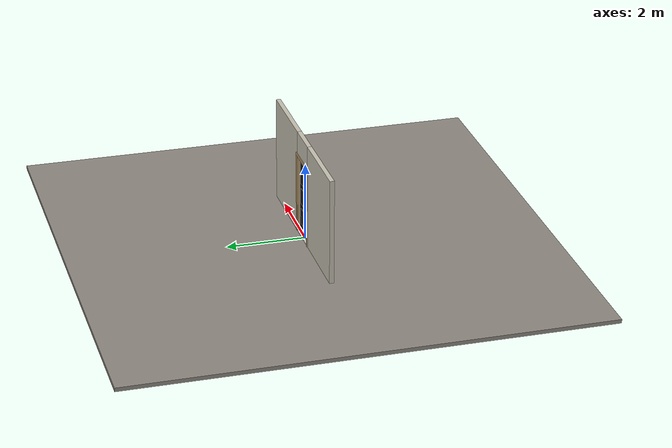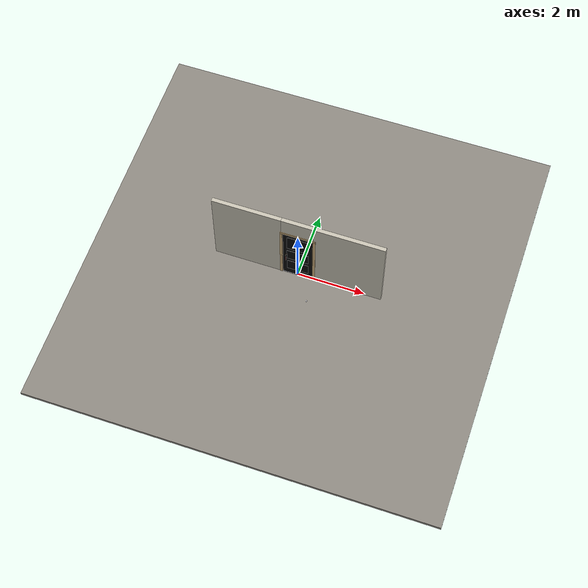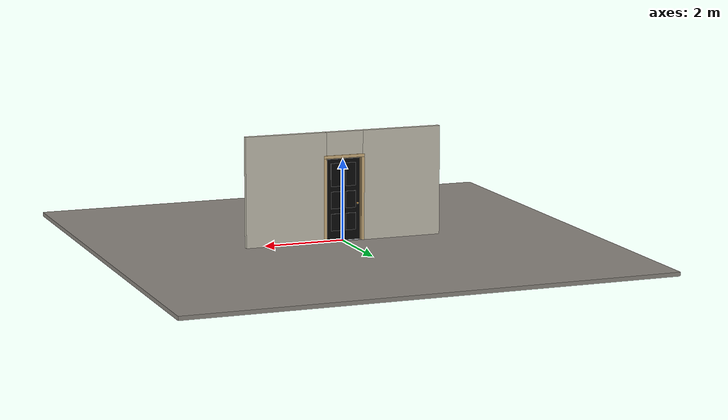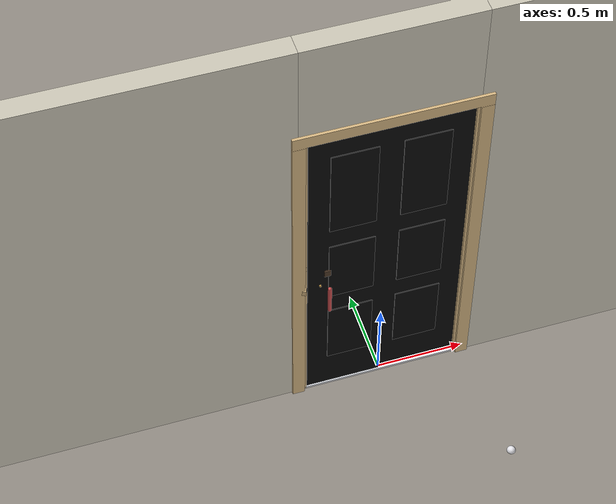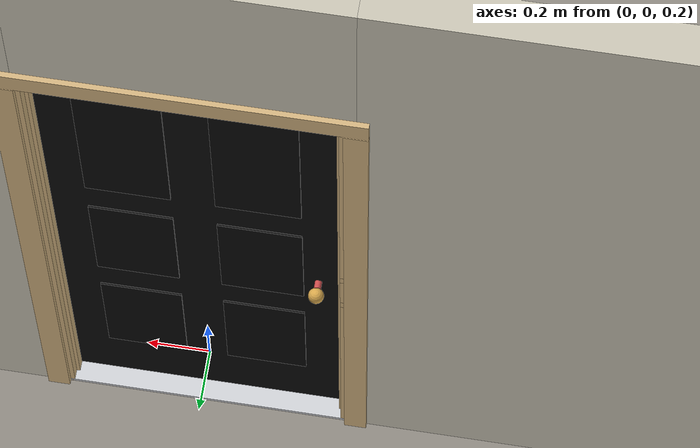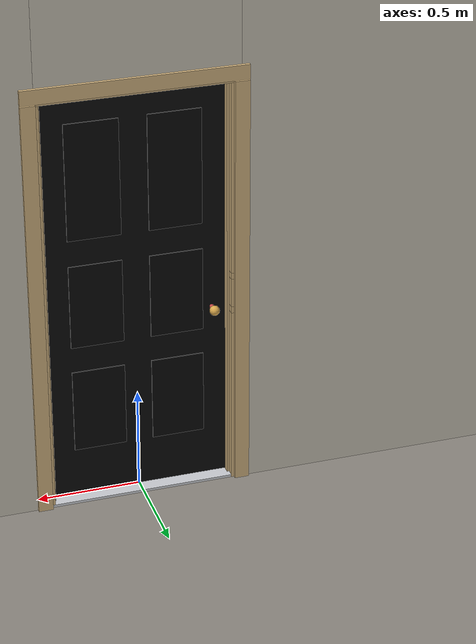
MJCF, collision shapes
<?xml version="1.0" ?>
<mujoco model="db0408_swing_single_full">
  <compiler angle="radian" meshdir="../../hardware" texturedir="../../textures" autolimits="true" inertiafromgeom="false"/>
  <option timestep="0.002" integrator="implicitfast" cone="elliptic" impratio="10" noslip_iterations="3">
    <flag multiccd="enable"/>
  </option>
  <size memory="16M"/>
  <default>
    <geom condim="4" solref="0.005 1" solimp="0.95 0.99 0.001"/>
    <joint solreflimit="0.005 1" solimplimit="0.95 0.99 0.001"/>
    <tendon solreflimit="0.005 1"/>
    <equality solref="0.002 1"/>
  </default>
  <visual>
    <headlight ambient="0.4 0.4 0.4" diffuse="0.7 0.7 0.7" specular="0.2 0.2 0.2"/>
    <quality shadowsize="4096"/>
    <map znear="0.01" zfar="60"/>
  </visual>
  <asset>
    <mesh name="cyl_face_e9e5036966" file="cyl_face_e9e5036966.obj"/>
    <mesh name="handleset_beb5526ad2" file="handleset_beb5526ad2.obj"/>
    <mesh name="hinge_2af0f4d6ca" file="hinge_2af0f4d6ca.obj"/>
    <mesh name="hinge_jamb_c0c0a62ada" file="hinge_jamb_c0c0a62ada.obj"/>
    <mesh name="knob_d1888f6f03" file="knob_d1888f6f03.obj"/>
    <material name="mat_floor" rgba="0.55 0.53 0.5 1" specular="0.2" shininess="0.15" reflectance="0"/>
    <material name="mat_wall" rgba="0.78 0.76 0.7 1" specular="0.2" shininess="0.1" reflectance="0"/>
    <material name="mat_leaf" rgba="0.04 0.04 0.04 1" specular="0.23" shininess="0.53" reflectance="0.02"/>
    <material name="mat_leaf_panel" rgba="0.037 0.037 0.037 1" specular="0.23" shininess="0.53" reflectance="0.02"/>
    <material name="mat_hinge" rgba="0.65 0.66 0.68 1" specular="0.74" shininess="0.5" reflectance="0.36"/>
    <material name="mat_op_bronze" rgba="0.3 0.22 0.15 1" specular="0.74" shininess="0.5" reflectance="0.36"/>
    <material name="mat_op_brass" rgba="0.85 0.66 0.3 1" specular="0.8" shininess="0.75" reflectance="0.4"/>
    <material name="mat_trim" rgba="0.85 0.66 0.3 1" specular="0.8" shininess="0.75" reflectance="0.4"/>
    <material name="mat_bolt" rgba="0.85 0.66 0.3 1" specular="0.8" shininess="0.75" reflectance="0.4"/>
    <material name="mat_deadbolt" rgba="0.85 0.66 0.3 1" specular="0.8" shininess="0.75" reflectance="0.4"/>
    <material name="mat_frame" rgba="0.82 0.7 0.5 1" specular="0.2" shininess="0.45" reflectance="0"/>
    <material name="mat_seal" rgba="0.1 0.1 0.1 1" specular="0.2" shininess="0.1" reflectance="0"/>
    <material name="mat_threshold" rgba="0.8 0.81 0.83 1" specular="0.8" shininess="0.6" reflectance="0.4"/>
    <material name="mat_stop" rgba="0.9 0.9 0.92 1" specular="0.8" shininess="0.9" reflectance="0.4"/>
    <texture name="skybox" type="skybox" builtin="gradient" rgb1="0.6 0.7 0.85" rgb2="0.9 0.92 0.95" width="256" height="256"/>
  </asset>
  <worldbody>
    <light name="sun" pos="1.5 -2.5 4" dir="-0.3 0.5 -0.8" directional="true" diffuse="0.8 0.8 0.8" specular="0.3 0.3 0.3" castshadow="true"/>
    <light name="fill" pos="-1.5 2.5 3" dir="0.3 -0.5 -0.7" directional="true" diffuse="0.35 0.35 0.4" castshadow="false"/>
    <camera name="robot_view" pos="0 -2.513687 1.734312" xyaxes="1 0 0 0 0.26963 0.962964" fovy="52"/>
    <camera name="far_view" pos="0 2.570688 1.734312" xyaxes="-1 0 0 0 -0.26963 0.962964" fovy="52"/>
    <camera name="iso" pos="-1.932062 -2.106937 2.141063" xyaxes="0.741536 -0.670913 0 0.242917 0.268487 0.932151" fovy="46"/>
    <camera name="detail_handle" pos="-0.146 -0.882 1.134" xyaxes="0.97561 0.219512 0 -0.070934 0.315262 0.94635" fovy="38"/>
    <geom name="floor" type="box" size="6 6 0.05" pos="0 0 -0.05" material="mat_floor" group="0" contype="1" conaffinity="1" friction="0.8 0.005 0.0001" density="2400"/>
    <geom name="wall_left" type="box" size="1.0075 0.0575 1.35" pos="-1.4925 0.0285 1.35" material="mat_wall" group="0" contype="1" conaffinity="1" friction="0.6 0.005 0.0001" density="800"/>
    <geom name="wall_right" type="box" size="1.0225 0.0575 1.35" pos="1.4775 0.0285 1.35" material="mat_wall" group="0" contype="1" conaffinity="1" friction="0.6 0.005 0.0001" density="800"/>
    <geom name="wall_header" type="box" size="0.47 0.0575 0.303" pos="-0.015 0.0285 2.397" material="mat_wall" group="0" contype="1" conaffinity="1" friction="0.6 0.005 0.0001" density="800"/>
    <geom name="hinge_0_jamb" type="mesh" mesh="hinge_jamb_c0c0a62ada" pos="0.433 -0.029 0.267" quat="0 0 1 0" material="mat_hinge" group="1" contype="0" conaffinity="0" density="7850"/>
    <geom name="hinge_1_jamb" type="mesh" mesh="hinge_jamb_c0c0a62ada" pos="0.433 -0.029 1.029" quat="0 0 1 0" material="mat_hinge" group="1" contype="0" conaffinity="0" density="7850"/>
    <geom name="hinge_2_jamb" type="mesh" mesh="hinge_jamb_c0c0a62ada" pos="0.433 -0.029 1.861" quat="0 0 1 0" material="mat_hinge" group="1" contype="0" conaffinity="0" density="7850"/>
    <geom name="leaf_deadbolt_strike_b" type="box" size="0.0155 0.003 0.0005" pos="-0.4355 0 1.0705" quat="0.5 0.5 0.5 0.5" material="mat_deadbolt" group="1" contype="0" conaffinity="0" density="7800"/>
    <geom name="leaf_deadbolt_strike_l" type="box" size="0.003 0.0155 0.0005" pos="-0.4355 -0.0125 1.089" quat="0.5 0.5 0.5 0.5" material="mat_deadbolt" group="1" contype="0" conaffinity="0" density="7800"/>
    <geom name="leaf_deadbolt_strike_t" type="box" size="0.0155 0.003 0.0005" pos="-0.4355 0 1.1075" quat="0.5 0.5 0.5 0.5" material="mat_deadbolt" group="1" contype="0" conaffinity="0" density="7800"/>
    <geom name="leaf_deadbolt_strike_r" type="box" size="0.003 0.0155 0.0005" pos="-0.4355 0.0125 1.089" quat="0.5 0.5 0.5 0.5" material="mat_deadbolt" group="1" contype="0" conaffinity="0" density="7800"/>
    <geom name="jamb_hinge" type="box" size="0.0095 0.0575 1.0225" pos="0.4455 0.0285 1.0225" material="mat_frame" group="0" contype="1" conaffinity="1" friction="0.6 0.005 0.0001" density="400"/>
    <geom name="strike_914_wall_n" type="box" size="0.0245 0.039075 0.0167" pos="-0.4605 0.046925 0.914" material="mat_frame" group="0" contype="1" conaffinity="1" friction="0.6 0.005 0.0001" density="400"/>
    <geom name="strike_914_wall_p" type="box" size="0.0245 0.008 0.0167" pos="-0.4605 -0.01585 0.914" material="mat_frame" group="0" contype="1" conaffinity="1" friction="0.6 0.005 0.0001" density="400"/>
    <geom name="strike_914_ramp" type="box" size="0.0245 0.01649 0.0167" pos="-0.465136 -0.028673 0.914" quat="0.977148 0 0 -0.212558" material="mat_frame" group="0" contype="1" conaffinity="1" friction="0.12 0.005 0.0001" density="400"/>
    <geom name="strike_914_back" type="box" size="0.01615 0.00785 0.0167" pos="-0.46885 0 0.914" material="mat_frame" group="0" contype="1" conaffinity="1" friction="0.6 0.005 0.0001" density="400"/>
    <geom name="strike_1089_wall_n" type="box" size="0.0245 0.03825 0.0155" pos="-0.4605 0.04775 1.089" material="mat_frame" group="0" contype="1" conaffinity="1" friction="0.6 0.005 0.0001" density="400"/>
    <geom name="strike_1089_wall_p" type="box" size="0.0245 0.00975 0.0155" pos="-0.4605 -0.01925 1.089" material="mat_frame" group="0" contype="1" conaffinity="1" friction="0.6 0.005 0.0001" density="400"/>
    <geom name="strike_1089_back" type="box" size="0.0098 0.0095 0.0155" pos="-0.4752 0 1.089" material="mat_frame" group="0" contype="1" conaffinity="1" friction="0.6 0.005 0.0001" density="400"/>
    <geom name="jamb_strike_0" type="box" size="0.0245 0.0575 0.44865" pos="-0.4605 0.0285 0.44865" material="mat_frame" group="0" contype="1" conaffinity="1" friction="0.6 0.005 0.0001" density="400"/>
    <geom name="jamb_strike_1" type="box" size="0.0245 0.0575 0.0714" pos="-0.4605 0.0285 1.0021" material="mat_frame" group="0" contype="1" conaffinity="1" friction="0.6 0.005 0.0001" density="400"/>
    <geom name="jamb_strike_2" type="box" size="0.0245 0.0575 0.47025" pos="-0.4605 0.0285 1.57475" material="mat_frame" group="0" contype="1" conaffinity="1" friction="0.6 0.005 0.0001" density="400"/>
    <geom name="jamb_head" type="box" size="0.47 0.0575 0.0095" pos="-0.015 0.0285 2.0545" material="mat_frame" group="0" contype="1" conaffinity="1" friction="0.6 0.005 0.0001" density="400"/>
    <geom name="head_stud" type="box" size="0.47 0.0575 0.015" pos="-0.015 0.0285 2.079" material="mat_wall" group="0" contype="1" conaffinity="1" friction="0.6 0.005 0.0001" density="500"/>
    <geom name="stop_hinge" type="box" size="0.0055 0.016 1.0225" pos="0.4305 0.0385 1.0225" material="mat_frame" group="0" contype="1" conaffinity="1" friction="0.6 0.005 0.0001" density="400"/>
    <geom name="stop_strike" type="box" size="0.0055 0.016 1.0225" pos="-0.4305 0.0385 1.0225" material="mat_frame" group="0" contype="1" conaffinity="1" friction="0.6 0.005 0.0001" density="400"/>
    <geom name="stop_head" type="box" size="0.436 0.016 0.0055" pos="0 0.0385 2.0395" material="mat_frame" group="0" contype="1" conaffinity="1" friction="0.6 0.005 0.0001" density="400"/>
    <geom name="seal_hinge" type="box" size="0.004 0.0015 1.0225" pos="0.433 0.0235 1.0225" material="mat_seal" group="1" contype="0" conaffinity="0" density="1100"/>
    <geom name="seal_strike" type="box" size="0.004 0.0015 1.0225" pos="-0.433 0.0235 1.0225" material="mat_seal" group="1" contype="0" conaffinity="0" density="1100"/>
    <geom name="seal_head" type="box" size="0.416 0.0015 0.008" pos="0 0.0235 2.033" material="mat_seal" group="1" contype="0" conaffinity="0" density="1100"/>
    <geom name="casing_l_n" type="box" size="0.035 0.008 1.032" pos="-0.485 -0.037 1.0225" material="mat_frame" group="2" contype="0" conaffinity="0" density="400"/>
    <geom name="casing_r_n" type="box" size="0.035 0.008 1.032" pos="0.485 -0.037 1.0225" material="mat_frame" group="2" contype="0" conaffinity="0" density="400"/>
    <geom name="casing_h_n" type="box" size="0.52 0.008 0.035" pos="0 -0.037 2.094" material="mat_frame" group="2" contype="0" conaffinity="0" density="400"/>
    <geom name="casing_l_p" type="box" size="0.035 0.008 1.032" pos="-0.485 0.094 1.0225" material="mat_frame" group="2" contype="0" conaffinity="0" density="400"/>
    <geom name="casing_r_p" type="box" size="0.035 0.008 1.032" pos="0.485 0.094 1.0225" material="mat_frame" group="2" contype="0" conaffinity="0" density="400"/>
    <geom name="casing_h_p" type="box" size="0.52 0.008 0.035" pos="0 0.094 2.094" material="mat_frame" group="2" contype="0" conaffinity="0" density="400"/>
    <geom name="threshold" type="box" size="0.455 0.0575 0.0065" pos="0 0.0285 0.0065" material="mat_threshold" group="0" contype="1" conaffinity="1" friction="0.5 0.005 0.0001" density="2700"/>
    <geom name="floor_stop_dome" type="sphere" size="0.025" pos="0.516931 -0.758862 0" material="mat_stop" group="0" contype="1" conaffinity="1" friction="0.6 0.005 0.0001" density="7000"/>
    <site name="approach_point" pos="0 -1.5 0" quat="1 0 0 0" size="0.05" rgba="0.2 0.9 0.2 0.5" group="4"/>
    <site name="goal_point" pos="0 1.5 0" quat="1 0 0 0" size="0.05" rgba="0.2 0.9 0.2 0.5" group="4"/>
    <site name="door_plane_center" pos="0 0 1.0225" quat="1 0 0 0" size="0.02" rgba="0.2 0.9 0.2 0.5" group="4"/>
    <body name="leaf" pos="0.436 0 0">
      <inertial pos="-0.44211 -0.002438 1.022642" mass="25.06094" quat="0.504121 -0.50038 -0.500084 -0.495377" diaginertia="1.679716301 8.2477927 9.913384595"/>
      <joint name="leaf_hinge" type="hinge" axis="0 0 1" pos="-0.003 -0.029 0" limited="true" range="0 1.658063" solreflimit="0.02 1" damping="0.254501" frictionloss="0.835796" armature="0.02"/>
      <geom name="leaf_slab" type="box" size="0.432 0.022 1.012" pos="-0.435 0 1.029" material="mat_leaf" group="0" contype="1" conaffinity="1" friction="0.4 0.005 0.0001" density="1"/>
      <geom name="leaf_panel_0_n" type="box" size="0.12598 0.003 0.208024" pos="-0.24402 -0.025 0.467664" material="mat_leaf_panel" group="1" contype="0" conaffinity="0" density="1"/>
      <geom name="leaf_panel_0_p" type="box" size="0.12598 0.003 0.208024" pos="-0.24402 0.025 0.467664" material="mat_leaf_panel" group="1" contype="0" conaffinity="0" density="1"/>
      <geom name="leaf_panel_1_n" type="box" size="0.12598 0.003 0.208024" pos="-0.62598 -0.025 0.467664" material="mat_leaf_panel" group="1" contype="0" conaffinity="0" density="1"/>
      <geom name="leaf_panel_1_p" type="box" size="0.12598 0.003 0.208024" pos="-0.62598 0.025 0.467664" material="mat_leaf_panel" group="1" contype="0" conaffinity="0" density="1"/>
      <geom name="leaf_panel_2_n" type="box" size="0.12598 0.003 0.208024" pos="-0.24402 -0.025 1.013712" material="mat_leaf_panel" group="1" contype="0" conaffinity="0" density="1"/>
      <geom name="leaf_panel_2_p" type="box" size="0.12598 0.003 0.208024" pos="-0.24402 0.025 1.013712" material="mat_leaf_panel" group="1" contype="0" conaffinity="0" density="1"/>
      <geom name="leaf_panel_3_n" type="box" size="0.12598 0.003 0.208024" pos="-0.62598 -0.025 1.013712" material="mat_leaf_panel" group="1" contype="0" conaffinity="0" density="1"/>
      <geom name="leaf_panel_3_p" type="box" size="0.12598 0.003 0.208024" pos="-0.62598 0.025 1.013712" material="mat_leaf_panel" group="1" contype="0" conaffinity="0" density="1"/>
      <geom name="leaf_panel_4_n" type="box" size="0.12598 0.003 0.284032" pos="-0.24402 -0.025 1.635768" material="mat_leaf_panel" group="1" contype="0" conaffinity="0" density="1"/>
      <geom name="leaf_panel_4_p" type="box" size="0.12598 0.003 0.284032" pos="-0.24402 0.025 1.635768" material="mat_leaf_panel" group="1" contype="0" conaffinity="0" density="1"/>
      <geom name="leaf_panel_5_n" type="box" size="0.12598 0.003 0.284032" pos="-0.62598 -0.025 1.635768" material="mat_leaf_panel" group="1" contype="0" conaffinity="0" density="1"/>
      <geom name="leaf_panel_5_p" type="box" size="0.12598 0.003 0.284032" pos="-0.62598 0.025 1.635768" material="mat_leaf_panel" group="1" contype="0" conaffinity="0" density="1"/>
      <geom name="hinge_0" type="mesh" mesh="hinge_2af0f4d6ca" pos="-0.003 -0.029 0.267" quat="0 0 1 0" material="mat_hinge" group="1" contype="0" conaffinity="0" density="7850"/>
      <geom name="hinge_1" type="mesh" mesh="hinge_2af0f4d6ca" pos="-0.003 -0.029 1.029" quat="0 0 1 0" material="mat_hinge" group="1" contype="0" conaffinity="0" density="7850"/>
      <geom name="hinge_2" type="mesh" mesh="hinge_2af0f4d6ca" pos="-0.003 -0.029 1.861" quat="0 0 1 0" material="mat_hinge" group="1" contype="0" conaffinity="0" density="7850"/>
      <geom name="leaf_handleset_n" type="mesh" mesh="handleset_beb5526ad2" pos="-0.762 -0.022 0.854" quat="0.707107 0.707107 0 0" material="mat_op_bronze" group="1" contype="0" conaffinity="0" density="3000"/>
      <geom name="leaf_handleset_col_n" type="capsule" size="0.011 0.09" pos="-0.762 -0.082 0.854" material="mat_op_bronze" group="3" contype="1" conaffinity="1" rgba="0.8 0.3 0.3 0.25" friction="0.7 0.01 0.0001" density="3000"/>
      <geom name="leaf_latch_bolt_faceplate" type="box" size="0.0006 0.01235 0.0267" pos="-0.8664 0 0.914" material="mat_bolt" group="1" contype="0" conaffinity="0" density="8500"/>
      <geom name="leaf_deadbolt_faceplate" type="box" size="0.0006 0.014 0.0245" pos="-0.8664 0 1.089" material="mat_deadbolt" group="1" contype="0" conaffinity="0" density="8500"/>
      <geom name="leaf_deadbolt_cylinder_face" type="mesh" mesh="cyl_face_e9e5036966" pos="-0.802 -0.022 1.089" quat="0 0 -0.707107 0.707107" material="mat_deadbolt" group="1" contype="0" conaffinity="0" density="7100"/>
      <site name="leaf_handleset_grip_n" pos="-0.762 -0.082 0.854" quat="1 0 0 0" size="0.012" rgba="0.2 0.9 0.2 0.5" group="4"/>
      <site name="leaf_edge_mid" pos="-0.867 0 1.012" quat="1 0 0 0" size="0.02" rgba="0.2 0.9 0.2 0.5" group="4"/>
      <body name="leaf_handle" pos="-0.797 0 0.914">
        <inertial pos="0 0.052948 0" mass="0.60261" quat="0.5 0.5 0.5 0.5" diaginertia="0.000156736 0.000451151 0.000451151"/>
        <joint name="leaf_handle_hinge" type="hinge" axis="0 1 0" limited="true" range="0 0.87" damping="0.142525" frictionloss="0.038" stiffness="0.5" springref="-0.5" armature="0.01"/>
        <geom name="leaf_handle_spindle" type="cylinder" size="0.006 0.03" pos="0 0 0" quat="0.707107 -0.707107 0 0" material="mat_op_brass" group="1" contype="0" conaffinity="0" density="7850"/>
        <geom name="leaf_handle_knob_p" type="mesh" mesh="knob_d1888f6f03" pos="0 0.022 0" quat="0 0 0.707107 0.707107" material="mat_op_brass" group="1" contype="0" conaffinity="0" density="3000"/>
        <geom name="leaf_handle_knob_col_p" type="sphere" size="0.0243" pos="0 0.0685 0" material="mat_op_brass" group="0" contype="1" conaffinity="1" friction="0.9 0.01 0.0001" density="3000"/>
        <geom name="leaf_handle_knob_neck_p" type="cylinder" size="0.011 0.012" pos="0 0.034 0" quat="0.707107 -0.707107 0 0" material="mat_op_brass" group="3" contype="1" conaffinity="1" rgba="0.8 0.3 0.3 0.25" friction="0.6 0.005 0.0001" density="3000"/>
        <site name="leaf_handle_grip_p" pos="0 0.0685 0" quat="1 0 0 0" size="0.012" rgba="0.2 0.9 0.2 0.5" group="4"/>
      </body>
      <body name="leaf_thumbpiece" pos="-0.762 -0.04 1.026">
        <inertial pos="0 0.004 0" mass="0.05184" quat="-0.5 0.5 0.5 0.5" diaginertia="0.000006981 0.000007488 0.000009124"/>
        <joint name="leaf_thumbpiece_hinge" type="hinge" axis="-1 0 0" pos="0 0 0.02" limited="true" range="0 0.35" damping="0.219407" frictionloss="0.058" stiffness="1.2" springref="-0.416667" armature="0.01"/>
        <geom name="leaf_thumbpiece_geom" type="box" size="0.018 0.004 0.02" pos="0 0 0" material="mat_op_bronze" group="0" contype="1" conaffinity="1" friction="0.6 0.005 0.0001" density="3000"/>
        <geom name="leaf_thumbpiece_boss" type="box" size="0.01 0.012 0.006" pos="0 0.012 0" material="mat_op_bronze" group="1" contype="0" conaffinity="0" density="3000"/>
        <site name="leaf_thumb_push" pos="0 -0.005 0.01" quat="1 0 0 0" size="0.01" rgba="0.2 0.9 0.2 0.5" group="4"/>
      </body>
      <body name="leaf_latch_bolt" pos="-0.867 0 0.914">
        <inertial pos="0.00865 0 0" mass="0.041419" quat="0.92388 0.382683 0 0" diaginertia="0.000000798 0.000005598 0.000005598"/>
        <joint name="leaf_latch_bolt_slide" type="slide" axis="1 0 0" limited="true" range="0 0.0127" damping="2" frictionloss="0.3" stiffness="300" springref="-0.008333" armature="0.1"/>
        <geom name="leaf_latch_bolt_capsule" type="capsule" size="0.00635 0.015" pos="0.00865 0 0" quat="0.707107 0 -0.707107 0" material="mat_bolt" group="0" contype="1" conaffinity="1" friction="0.2 0.005 0.0001" density="8500"/>
      </body>
      <body name="leaf_deadbolt" pos="-0.867 0 1.089">
        <inertial pos="0.0277 0 0" mass="0.18836" quat="0 0 0.707107 0.707107" diaginertia="0.000013829 0.000052194 0.000057986"/>
        <geom name="leaf_deadbolt_box" type="box" size="0.0277 0.008 0.0125" pos="0.0277 0 0" material="mat_deadbolt" group="0" contype="1" conaffinity="1" friction="0.3 0.005 0.0001" density="8500"/>
      </body>
    </body>
  </worldbody>
  <tendon>
    <fixed name="leaf_thumb_coupling" limited="true" range="0 10">
      <joint joint="leaf_latch_bolt_slide" coef="1"/>
      <joint joint="leaf_thumbpiece_hinge" coef="-0.039688"/>
    </fixed>
    <fixed name="leaf_latch_bolt_coupling" limited="true" range="0 10">
      <joint joint="leaf_latch_bolt_slide" coef="1"/>
      <joint joint="leaf_handle_hinge" coef="-0.015679"/>
    </fixed>
  </tendon>
  <sensor>
    <jointpos name="leaf_hinge_pos" joint="leaf_hinge"/>
    <jointvel name="leaf_hinge_vel" joint="leaf_hinge"/>
    <jointpos name="leaf_handle_hinge_pos" joint="leaf_handle_hinge"/>
    <jointvel name="leaf_handle_hinge_vel" joint="leaf_handle_hinge"/>
    <jointpos name="leaf_thumbpiece_hinge_pos" joint="leaf_thumbpiece_hinge"/>
    <jointvel name="leaf_thumbpiece_hinge_vel" joint="leaf_thumbpiece_hinge"/>
    <jointpos name="leaf_latch_bolt_slide_pos" joint="leaf_latch_bolt_slide"/>
    <jointvel name="leaf_latch_bolt_slide_vel" joint="leaf_latch_bolt_slide"/>
  </sensor>
</mujoco>
